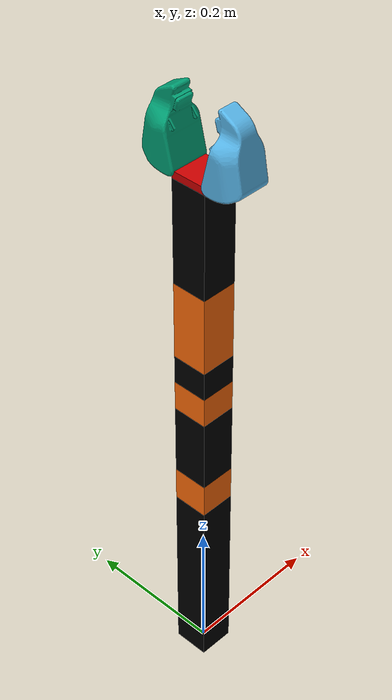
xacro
<?xml version="1.0"?>
<!-- Revolute-Revolute Manipulator -->
<robot name="rrbot" xmlns:xacro="http://www.ros.org/wiki/xacro">

  <!-- Constants for robot dimensions -->
  <xacro:property name="PI"        value="3.1415926535897931"/>
  <xacro:property name="mass"      value="1" /> <!-- arbitrary value for mass -->
  <xacro:property name="width"     value="0.05" /> <!-- Square dimensions (widthxwidth) of beams -->
  <xacro:property name="height0"   value="0.275" /> <!-- Link 0 -->
  <xacro:property name="height1"   value="0.050" /> <!-- Link 1 -->
  <xacro:property name="height2"   value="0.105" /> <!-- Link 2 -->
  <xacro:property name="height3"   value="0.043" /> <!-- Link 3 -->
  <xacro:property name="height4"   value="0.041" /> <!-- Link 4 -->
  <xacro:property name="height5"   value="0.11" /> <!-- Link 5 -->
  <!-- Link 6 -->
  <xacro:property name="height6"   value="0.145" /> <!-- Link 6 -->
  <xacro:property name="heightEEF" value="0.01" /> <!-- Link 7  EEF Link 3=>5-->

  <!-- upper limit of the angle -->
  <xacro:property name="UpperLim_roll"  value="2.617" />
  <xacro:property name="UpperLim_roll_joint0"  value="0.86" />
  <xacro:property name="UpperLim_joint1"  value="2.00644" />
  <xacro:property name="UpperLim_joint3"  value="2.18" />
  <xacro:property name="UpperLim_joint5"  value="1.958382" />

  <xacro:property name="LowerLim_roll"  value= "-2.617" />
  <xacro:property name="LowerLim_roll_joint0"  value= "-1.87" />
  <xacro:property name="LowerLim_joint1"  value="-1.8699" />
  <xacro:property name="LowerLim_joint3"  value="-1.7385" />
  <xacro:property name="LowerLim_joint5"  value="-1.677152" />

 <!--  camera reference from link0-->
  <xacro:property name="camera_offsetX" value="-0.42" />
  <xacro:property name="camera_offsetY" value="-0.205" />
  <xacro:property name="camera_offsetZ" value="0.431" />

 <!--  R-arm reference from link0 -->
  <xacro:property name="RArm_offsetY" value="-0.551" />

  <!-- Import all Gazebo-customization elements, including Gazebo colors -->
  <xacro:include filename="$(find rrbot_description)/urdf/rrbot.gazebo" />

  <!--  Import d435_camera urdf -->
  <xacro:include filename="$(find rrbot_description)/xacro/d435_camera.xacro" />
  <!-- Import  gripper urdf-->
  <xacro:include filename="$(find rrbot_description)/xacro/gripper.xacro" />
  <!--  Import joint_link urdf -->
  <xacro:include filename="$(find rrbot_description)/xacro/arm_joint_link.xacro" />

  <!-- Used for fixing robot to Gazebo 'base_link' -->
  <link name="world"/>

  <!--  LEFT ARM DESCRIPTION -->
  <xacro:joint_link_macro
    prefix="L" joint_name="fixed" joint_type="fixed" LowerLim="None" UpperLim="None"
    parent="world" child="link0"
    width="${width}" height="${height0}" color="black" mass="1.0"
    Jx="0" Jy="0" Jz="0" Jroll="0" Jpitch="0" Jyaw="0"
    Lx="0" Ly="0" Lz="${height0/2}" Lroll="0" Lpitch="0" Lyaw="0" />

  <xacro:joint_link_macro
    prefix="L" joint_name="joint0" joint_type="revolute" LowerLim="${LowerLim_roll_joint0}" UpperLim="${UpperLim_roll_joint0}"
    parent="link0" child="link1"
    width="${width}" height="${height1}" color="orange" mass="1.0"
    Jx="0" Jy="0" Jz="${height0}" Jroll="0" Jpitch="0" Jyaw="0"
    Lx="0" Ly="0" Lz="${height1/2}" Lroll="0" Lpitch="0" Lyaw="0" />

  <xacro:joint_link_macro
    prefix="L" joint_name="joint1" joint_type="revolute" LowerLim="${LowerLim_joint1}" UpperLim="${UpperLim_joint1}"
    parent="link1" child="link2"
    width="${width}" height="${height2}" color="black" mass="1.0"
    Jx="0" Jy="0" Jz="${height1}" Jroll="${PI/2}" Jpitch="0" Jyaw="0"
    Lx="0" Ly="${height2/2}" Lz="0" Lroll="${PI/2}" Lpitch="0" Lyaw="0" />

  <xacro:joint_link_macro
    prefix="L" joint_name="joint2" joint_type="revolute" LowerLim="${LowerLim_roll}" UpperLim="${UpperLim_roll}"
    parent="link2" child="link3"
    width="${width}" height="${height3}" color="orange" mass="1.0"
    Jx="0" Jy="${height2}" Jz="0" Jroll="${-PI/2}" Jpitch="0" Jyaw="0"
    Lx="0" Ly="0" Lz="${height3/2}" Lroll="0" Lpitch="0" Lyaw="0" />

  <xacro:joint_link_macro
    prefix="L" joint_name="joint3" joint_type="revolute" LowerLim="${LowerLim_joint3}" UpperLim="${UpperLim_joint3}"
    parent="link3" child="link4"
    width="${width}" height="${height4}" color="black" mass="1.0"
    Jx="0" Jy="0" Jz="${height3}" Jroll="${PI/2}" Jpitch="0" Jyaw="${PI}"
    Lx="0" Ly="${height4/2}" Lz="0" Lroll="${-PI/2}" Lpitch="0" Lyaw="0" />

  <xacro:joint_link_macro
    prefix="L" joint_name="joint4" joint_type="revolute" LowerLim="${LowerLim_roll}" UpperLim="${UpperLim_roll}"
    parent="link4" child="link5"
    width="${width}" height="${height5}" color="orange" mass="1.0"
    Jx="0" Jy="${height4}" Jz="0" Jroll="${-PI/2}" Jpitch="0" Jyaw="0"
    Lx="0" Ly="0" Lz="${height5/2}" Lroll="0" Lpitch="0" Lyaw="0" />

  <xacro:joint_link_macro
    prefix="L" joint_name="joint5" joint_type="revolute" LowerLim="${LowerLim_joint5}" UpperLim="${UpperLim_joint5}"
    parent="link5" child="link6"
    width="${width}" height="${height6}" color="black" mass="1.0"
    Jx="0" Jy="0" Jz="${height5}" Jroll="${PI/2}" Jpitch="0" Jyaw="0"
    Lx="0" Ly="${height6/2}" Lz="0" Lroll="${-PI/2}" Lpitch="0" Lyaw="0" />

  <xacro:joint_link_macro
    prefix="L" joint_name="EEFjoint" joint_type="fixed" LowerLim="None" UpperLim="None"
    parent="link6" child="EEFlink"
    width="${width}" height="${heightEEF}" color="red" mass="1.0"
    Jx="0" Jy="${height6}" Jz="0" Jroll="${-PI/2}" Jpitch="0" Jyaw="0"
    Lx="0" Ly="0" Lz="${heightEEF/2}" Lroll="0" Lpitch="0" Lyaw="0" />

  <xacro:gripper prefix="L" parent="EEFlink" parent_height="${heightEEF}" LorR="left" reflect="1" LowerLim_roll="${LowerLim_roll}"  UpperLim_roll="${UpperLim_roll}" PI="${PI}"/>
  <xacro:gripper prefix="L" parent="EEFlink" parent_height="${heightEEF}" LorR="right" reflect="-1" LowerLim_roll="${LowerLim_roll}"  UpperLim_roll="${UpperLim_roll}" PI="${PI}"/>

  <!--  RIGHT ARM DESCRIPTION -->

  <!--  D435 DESCRIPTION -->

</robot>

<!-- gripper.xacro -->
<!-- Revolute-Revolute Manipulator -->
<robot name="rrbot" xmlns:xacro="http://www.ros.org/wiki/xacro">
    <!--  pararell setting-->
    <xacro:macro name="gripper" params="parent parent_height prefix LorR reflect LowerLim_roll UpperLim_roll PI">
        <joint name="${prefix}${LorR}_gripper_joint" type="revolute">
            <axis xyz="0 ${reflect} 0"/>
            <limit lower="${LowerLim_roll}" upper="${UpperLim_roll}" effort="0" velocity="0"/>
            <origin rpy="0 0 ${PI/2}" xyz="0 ${reflect*0.03} ${parent_height}"/>
            <parent link="${prefix}${parent}"/>
            <child link="${prefix}${LorR}_gripper"/>
            <dynamics damping="0.0" friction="0.0"/>
        </joint>

        <link name="${prefix}${LorR}_gripper">
            <visual>
            <origin rpy="${(reflect-1)/2*pi} ${-PI/2} ${-PI/2}" xyz="0 0 0"/>
            <geometry>
                <mesh filename="package://urdf_tutorial/meshes/l_finger.dae"/>
            </geometry>
            </visual>
            <collision>
            <geometry>
                <mesh filename="package://urdf_tutorial/meshes/l_finger.dae"/>
            </geometry>
            <origin rpy="${(reflect-1)/2*pi} ${-PI/2} ${-PI/2}" xyz="0 0 0"/>
            </collision>
            <inertial>
            <mass value="1.0" />
            <inertia ixx="1.0" ixy="0.0" ixz="0.0" iyy="1.0" iyz="0.0" izz="1.0" />
            </inertial>
        </link>

        <transmission name="${prefix}${LorR}_gripper_trans" type="SimpleTransmission">
            <type>transmission_interface/SimpleTransmission</type>
            <actuator name="${prefix}${LorR}_gripper_motor">
            <mechanicalReduction>1</mechanicalReduction>
            </actuator>
            <joint name="${prefix}${LorR}_gripper_joint">
            <hardwareInterface>PositionJointInterface</hardwareInterface>
            </joint>
        </transmission>
    </xacro:macro>

</robot>

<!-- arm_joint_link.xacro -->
<!-- Revolute-Revolute Manipulator -->
<robot name="rrbot" xmlns:xacro="http://www.ros.org/wiki/xacro">

  <material name="black_x">
    <color rgba="0.0 0.0 0.0 1.0"/>
  </material>

  <material name="orange_x">
    <color rgba="${255/255} ${108/255} ${10/255} 1.0"/>
  </material>

  <material name="red_x">
    <color rgba="0.8 0.0 0.0 1.0"/>
  </material>

  <xacro:macro name="joint_link_macro" params="prefix joint_name joint_type LowerLim UpperLim parent child width height color mass Jx Jy Jz Jroll Jpitch Jyaw Lx Ly Lz Lroll Lpitch Lyaw">

    <joint name="${prefix}${joint_name}" type="${joint_type}">

      <xacro:if value="${parent=='world'}">
        <parent link="${parent}"/>
      </xacro:if>
      <xacro:if value="${parent!='world'}">
        <parent link="${prefix}${parent}"/>
      </xacro:if>

      <child link="${prefix}${child}"/>
      <origin xyz="${Jx} ${Jy} ${Jz}" rpy="${Jroll} ${Jpitch} ${Jyaw}"/>

      <xacro:if value="${joint_type=='revolute'}">
        <limit lower="${LowerLim}" upper="${UpperLim}" effort="0" velocity="0"/>
        <axis xyz="0 0 1"/>
        <dynamics damping="0.0" />
      </xacro:if>

    </joint>

    <link name="${prefix}${child}">
      <collision>
        <origin xyz="${Lx} ${Ly} ${Lz}" rpy="${Lroll} ${Lpitch} ${Lyaw}"/>
        <geometry>
          <box size="${width} ${width} ${height}"/>
        </geometry>
      </collision>
      <visual>
        <origin xyz="${Lx} ${Ly} ${Lz}" rpy="${Lroll} ${Lpitch} ${Lyaw}"/>
        <geometry>
          <box size="${width} ${width} ${height}"/>
        </geometry>
        <xacro:if value="${color=='black'}">
          <material name="black_x"/>
        </xacro:if>
        <xacro:if value="${color=='orange'}">
          <material name="orange_x"/>
        </xacro:if>
        <xacro:if value="${color=='red'}">
          <material name="red_x"/>
        </xacro:if>
      </visual>
      <inertial>
        <mass value="${mass}" />
        <inertia
        ixx="${mass} / 12.0 * (${width}*${width} + ${height}*${height})" ixy="0.0" ixz="0.0"
        iyy="${mass} / 12.0 * (${height}*${height} + ${width}*${width})" iyz="0.0"
        izz="${mass} / 12.0 * (${width}*${width} + ${width}*${width})"/>
      </inertial>
    </link>

  </xacro:macro>
</robot>
